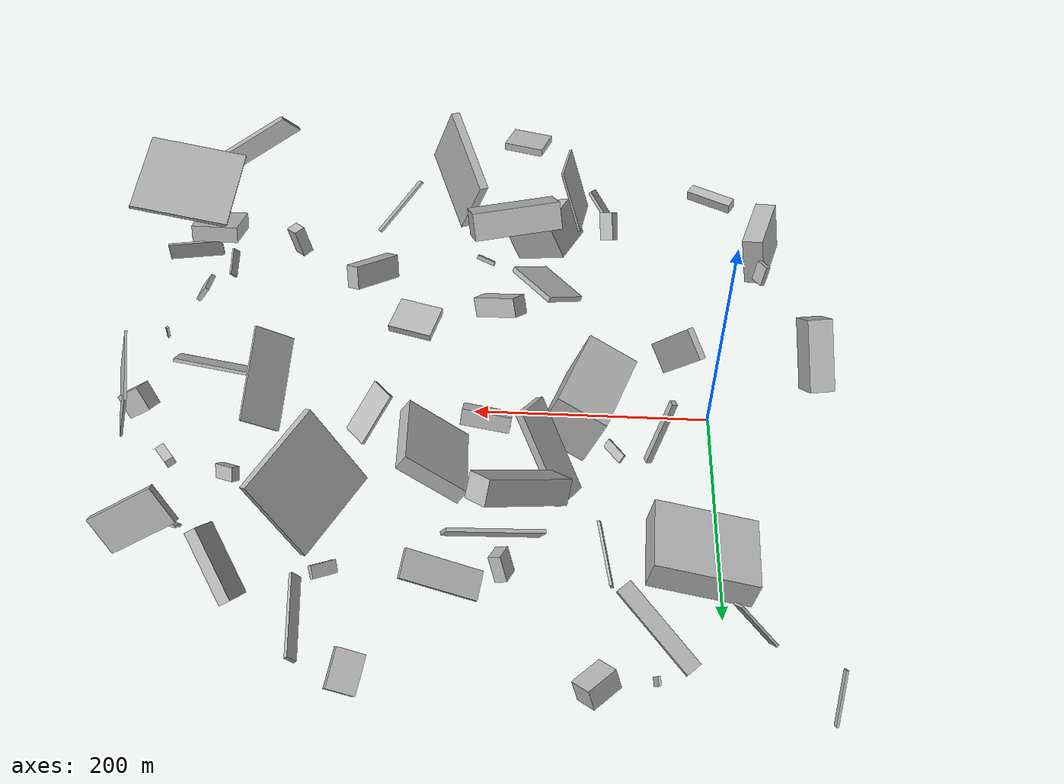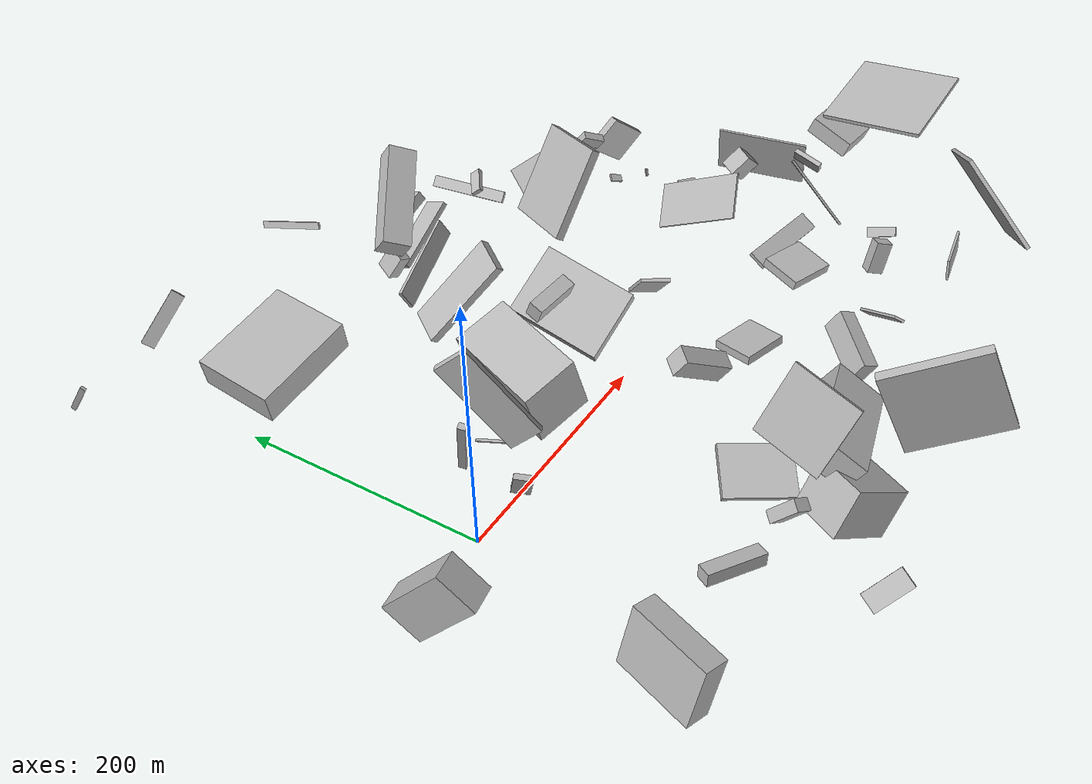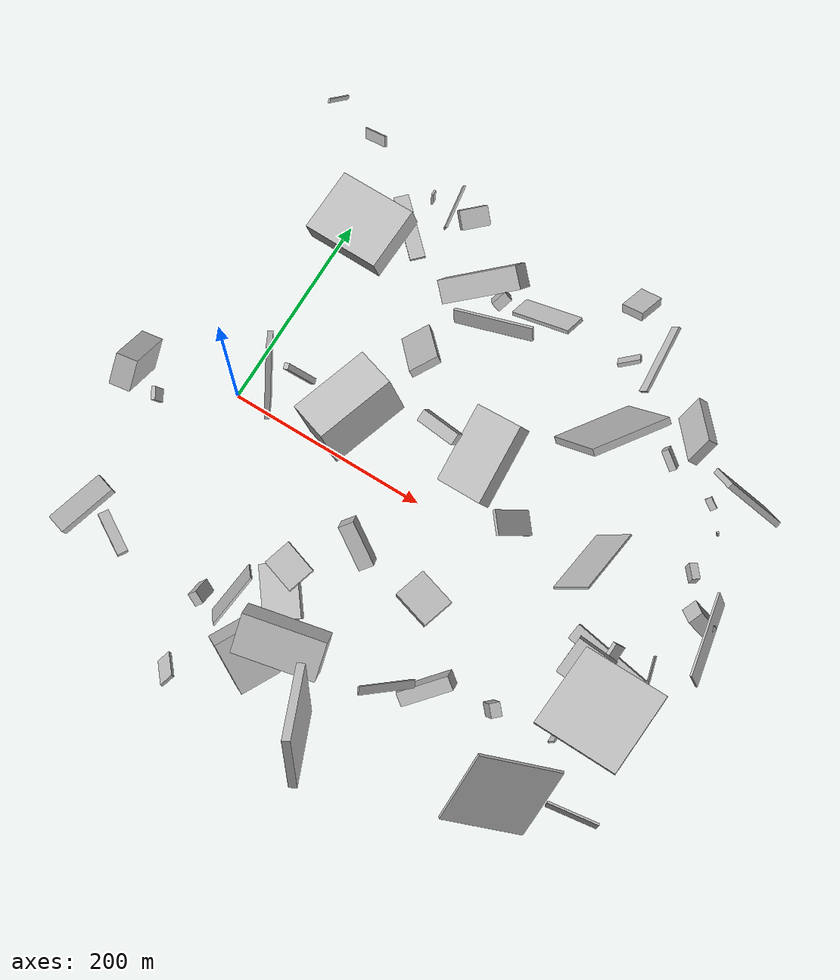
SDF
<sdf version="1.6">
 <world name="default">
  <scene>
   <sky><clouds><speed>12</speed></clouds></sky>
   <ambient>0.4 0.4 0.4 1</ambient>
   <background>0.7 0.7 0.7 1</background>
   <shadows>1</shadows>
  </scene>
  <gravity>0 0 -9.8066</gravity>
  <magnetic_field>6e-06 2.3e-05 -4.2e-05</magnetic_field>
  <physics default="0" name="default_physics" type="ode">
   <ode>
    <solver>
     <type>quick</type>
     <iters>10</iters>
     <sor>1.0</sor>
     <use_dynamic_moi_rescaling>0</use_dynamic_moi_rescaling>
    </solver>
    <constraints>
     <cfm>0</cfm>
     <erp>0.2</erp>
     <contact_max_correcting_vel>100</contact_max_correcting_vel>
     <contact_surface_layer>0.001</contact_surface_layer>
    </constraints>
   </ode>
   <max_step_size>0.004</max_step_size>
   <real_time_factor>1</real_time_factor>
   <real_time_update_rate>250</real_time_update_rate>
  </physics>
  <light name="sun" type="directional">
   <pose>0 0 10 0 0 0</pose>
   <diffuse>0.8 0.8 0.8 1</diffuse>
   <specular>0.2 0.2 0.2 1</specular>
   <attenuation>
    <range>1000</range>
    <constant>0.9</constant>
    <linear>0.01</linear>
    <quadratic>0.001</quadratic>
   </attenuation>
   <direction>-0.5 0.1 -0.9</direction>
  </light>
  <model name="building_1">
   <static>0</static>
   <pose>467.76090489960416 -45.89888958203898 38.56778294948547 1.960808910937761 0.5670550512998792 2.5669896251496627</pose>
   <link name="link">
    <gravity>0</gravity>
    <pose>0 0 1.0 0 0 0</pose>
    <collision name="collision"><geometry><box><size>2 78 2</size></box></geometry></collision>
    <visual name="visual">
     <cast_shadows>0</cast_shadows>
     <geometry><box><size>2 78 2</size></box></geometry>
     <material>
      <script>
       <uri>model://HANNAS_wall/materials/scripts</uri>
       <uri>model://HANNAS_wall/materials/textures</uri>
       <name>vrc/HANNAS_wall</name>
      </script>
     </material>
    </visual>
   </link>
  </model>
  <model name="building_2">
   <static>0</static>
   <pose>167.74798122561947 200.3650393923962 48.130913304036426 -0.4355031939083806 0.3586553467992852 -1.9375435690120009</pose>
   <link name="link">
    <gravity>0</gravity>
    <pose>0 0 10.5 0 0 0</pose>
    <collision name="collision"><geometry><box><size>16 10 21</size></box></geometry></collision>
    <visual name="visual">
     <cast_shadows>0</cast_shadows>
     <geometry><box><size>16 10 21</size></box></geometry>
     <material>
      <script>
       <uri>model://HANNAS_wall/materials/scripts</uri>
       <uri>model://HANNAS_wall/materials/textures</uri>
       <name>vrc/HANNAS_wall</name>
      </script>
     </material>
    </visual>
   </link>
  </model>
  <model name="building_3">
   <static>0</static>
   <pose>119.69699389766646 -176.48883424432944 100.86048902780854 0.6544457456956061 -1.1321958697068066 -0.7623614435813247</pose>
   <link name="link">
    <gravity>0</gravity>
    <pose>0 0 1.0 0 0 0</pose>
    <collision name="collision"><geometry><box><size>57 52 2</size></box></geometry></collision>
    <visual name="visual">
     <cast_shadows>0</cast_shadows>
     <geometry><box><size>57 52 2</size></box></geometry>
     <material>
      <script>
       <uri>model://HANNAS_wall/materials/scripts</uri>
       <uri>model://HANNAS_wall/materials/textures</uri>
       <name>vrc/HANNAS_wall</name>
      </script>
     </material>
    </visual>
   </link>
  </model>
  <model name="building_4">
   <static>0</static>
   <pose>175.00066919820156 172.68982923467365 67.58212561407267 2.6937456812024085 -0.25419174938237227 0.21216894997660307</pose>
   <link name="link">
    <gravity>0</gravity>
    <pose>0 0 8.0 0 0 0</pose>
    <collision name="collision"><geometry><box><size>79 3 16</size></box></geometry></collision>
    <visual name="visual">
     <cast_shadows>0</cast_shadows>
     <geometry><box><size>79 3 16</size></box></geometry>
     <material>
      <script>
       <uri>model://HANNAS_wall/materials/scripts</uri>
       <uri>model://HANNAS_wall/materials/textures</uri>
       <name>vrc/HANNAS_wall</name>
      </script>
     </material>
    </visual>
   </link>
  </model>
  <model name="building_5">
   <static>0</static>
   <pose>-56.07373087183152 -168.70745344216573 26.718574522673176 0.0711196364233532 0.19982613068525787 -0.2861187823008813</pose>
   <link name="link">
    <gravity>0</gravity>
    <pose>0 0 23.0 0 0 0</pose>
    <collision name="collision"><geometry><box><size>18 58 46</size></box></geometry></collision>
    <visual name="visual">
     <cast_shadows>0</cast_shadows>
     <geometry><box><size>18 58 46</size></box></geometry>
     <material>
      <script>
       <uri>model://HANNAS_wall/materials/scripts</uri>
       <uri>model://HANNAS_wall/materials/textures</uri>
       <name>vrc/HANNAS_wall</name>
      </script>
     </material>
    </visual>
   </link>
  </model>
  <model name="building_6">
   <static>0</static>
   <pose>123.76824530147195 -196.18021792045238 37.91261764534243 -3.1195749987423707 1.0888980667937036 2.6772491549586017</pose>
   <link name="link">
    <gravity>0</gravity>
    <pose>0 0 26.0 0 0 0</pose>
    <collision name="collision"><geometry><box><size>38 40 52</size></box></geometry></collision>
    <visual name="visual">
     <cast_shadows>0</cast_shadows>
     <geometry><box><size>38 40 52</size></box></geometry>
     <material>
      <script>
       <uri>model://HANNAS_wall/materials/scripts</uri>
       <uri>model://HANNAS_wall/materials/textures</uri>
       <name>vrc/HANNAS_wall</name>
      </script>
     </material>
    </visual>
   </link>
  </model>
  <model name="building_7">
   <static>0</static>
   <pose>99.42508004159288 228.1157326311536 121.7635861212911 -0.5451835780751348 -1.177148610909166 0.69374356389601</pose>
   <link name="link">
    <gravity>0</gravity>
    <pose>0 0 1.0 0 0 0</pose>
    <collision name="collision"><geometry><box><size>5 49 2</size></box></geometry></collision>
    <visual name="visual">
     <cast_shadows>0</cast_shadows>
     <geometry><box><size>5 49 2</size></box></geometry>
     <material>
      <script>
       <uri>model://HANNAS_wall/materials/scripts</uri>
       <uri>model://HANNAS_wall/materials/textures</uri>
       <name>vrc/HANNAS_wall</name>
      </script>
     </material>
    </visual>
   </link>
  </model>
  <model name="building_8">
   <static>0</static>
   <pose>369.05327053441437 24.721455327499108 61.696660127909915 2.4820770628777655 -0.7124499289047013 0.37323103657390316</pose>
   <link name="link">
    <gravity>0</gravity>
    <pose>0 0 1.0 0 0 0</pose>
    <collision name="collision"><geometry><box><size>39 80 2</size></box></geometry></collision>
    <visual name="visual">
     <cast_shadows>0</cast_shadows>
     <geometry><box><size>39 80 2</size></box></geometry>
     <material>
      <script>
       <uri>model://HANNAS_wall/materials/scripts</uri>
       <uri>model://HANNAS_wall/materials/textures</uri>
       <name>vrc/HANNAS_wall</name>
      </script>
     </material>
    </visual>
   </link>
  </model>
  <model name="building_9">
   <static>0</static>
   <pose>45.51082385057803 38.94982850195049 31.613713482311965 1.4075567532326694 0.32797302455336375 -2.8937865150148454</pose>
   <link name="link">
    <gravity>0</gravity>
    <pose>0 0 3.0 0 0 0</pose>
    <collision name="collision"><geometry><box><size>5 62 6</size></box></geometry></collision>
    <visual name="visual">
     <cast_shadows>0</cast_shadows>
     <geometry><box><size>5 62 6</size></box></geometry>
     <material>
      <script>
       <uri>model://HANNAS_wall/materials/scripts</uri>
       <uri>model://HANNAS_wall/materials/textures</uri>
       <name>vrc/HANNAS_wall</name>
      </script>
     </material>
    </visual>
   </link>
  </model>
  <model name="building_10">
   <static>0</static>
   <pose>294.63536244036794 -142.35243292427134 24.91173869352445 1.9620051519185902 -0.32957902686724727 0.8119596341572793</pose>
   <link name="link">
    <gravity>0</gravity>
    <pose>0 0 7.0 0 0 0</pose>
    <collision name="collision"><geometry><box><size>51 21 14</size></box></geometry></collision>
    <visual name="visual">
     <cast_shadows>0</cast_shadows>
     <geometry><box><size>51 21 14</size></box></geometry>
     <material>
      <script>
       <uri>model://HANNAS_wall/materials/scripts</uri>
       <uri>model://HANNAS_wall/materials/textures</uri>
       <name>vrc/HANNAS_wall</name>
      </script>
     </material>
    </visual>
   </link>
  </model>
  <model name="building_11">
   <static>0</static>
   <pose>86.12117932468257 -191.9771332239602 62.678237722722315 -2.5188464828635984 0.42536772552413077 -0.43555010894378016</pose>
   <link name="link">
    <gravity>0</gravity>
    <pose>0 0 12.5 0 0 0</pose>
    <collision name="collision"><geometry><box><size>13 9 25</size></box></geometry></collision>
    <visual name="visual">
     <cast_shadows>0</cast_shadows>
     <geometry><box><size>13 9 25</size></box></geometry>
     <material>
      <script>
       <uri>model://HANNAS_wall/materials/scripts</uri>
       <uri>model://HANNAS_wall/materials/textures</uri>
       <name>vrc/HANNAS_wall</name>
      </script>
     </material>
    </visual>
   </link>
  </model>
  <model name="building_12">
   <static>0</static>
   <pose>379.49934510850653 135.512088676271 79.31863089107786 0.7339247815496573 0.9141968366835045 1.6102956904958419</pose>
   <link name="link">
    <gravity>0</gravity>
    <pose>0 0 3.5 0 0 0</pose>
    <collision name="collision"><geometry><box><size>11 20 7</size></box></geometry></collision>
    <visual name="visual">
     <cast_shadows>0</cast_shadows>
     <geometry><box><size>11 20 7</size></box></geometry>
     <material>
      <script>
       <uri>model://HANNAS_wall/materials/scripts</uri>
       <uri>model://HANNAS_wall/materials/textures</uri>
       <name>vrc/HANNAS_wall</name>
      </script>
     </material>
    </visual>
   </link>
  </model>
  <model name="building_13">
   <static>0</static>
   <pose>282.63941302587773 270.1954825995849 20.44656383439693 -0.4505242957310167 -0.35323611856444104 -0.05887435509634746</pose>
   <link name="link">
    <gravity>0</gravity>
    <pose>0 0 4.5 0 0 0</pose>
    <collision name="collision"><geometry><box><size>23 31 9</size></box></geometry></collision>
    <visual name="visual">
     <cast_shadows>0</cast_shadows>
     <geometry><box><size>23 31 9</size></box></geometry>
     <material>
      <script>
       <uri>model://HANNAS_wall/materials/scripts</uri>
       <uri>model://HANNAS_wall/materials/textures</uri>
       <name>vrc/HANNAS_wall</name>
      </script>
     </material>
    </visual>
   </link>
  </model>
  <model name="building_14">
   <static>0</static>
   <pose>21.164218711686047 155.49823133244388 67.2811133640179 -1.4875752832616775 -0.1875319985691738 -0.0686216709291907</pose>
   <link name="link">
    <gravity>0</gravity>
    <pose>0 0 31.5 0 0 0</pose>
    <collision name="collision"><geometry><box><size>80 24 63</size></box></geometry></collision>
    <visual name="visual">
     <cast_shadows>0</cast_shadows>
     <geometry><box><size>80 24 63</size></box></geometry>
     <material>
      <script>
       <uri>model://HANNAS_wall/materials/scripts</uri>
       <uri>model://HANNAS_wall/materials/textures</uri>
       <name>vrc/HANNAS_wall</name>
      </script>
     </material>
    </visual>
   </link>
  </model>
  <model name="building_15">
   <static>0</static>
   <pose>205.20119969549899 -187.28204719792512 6.09263249411936 1.625644202755027 0.3340420265938035 -2.0271587954323613</pose>
   <link name="link">
    <gravity>0</gravity>
    <pose>0 0 9.0 0 0 0</pose>
    <collision name="collision"><geometry><box><size>2 4 18</size></box></geometry></collision>
    <visual name="visual">
     <cast_shadows>0</cast_shadows>
     <geometry><box><size>2 4 18</size></box></geometry>
     <material>
      <script>
       <uri>model://HANNAS_wall/materials/scripts</uri>
       <uri>model://HANNAS_wall/materials/textures</uri>
       <name>vrc/HANNAS_wall</name>
      </script>
     </material>
    </visual>
   </link>
  </model>
  <model name="building_16">
   <static>0</static>
   <pose>443.04189529075927 -104.1665858133776 161.83352429607913 2.9641304734658345 0.09331097109590529 1.50928313298083</pose>
   <link name="link">
    <gravity>0</gravity>
    <pose>0 0 1.5 0 0 0</pose>
    <collision name="collision"><geometry><box><size>80 80 3</size></box></geometry></collision>
    <visual name="visual">
     <cast_shadows>0</cast_shadows>
     <geometry><box><size>80 80 3</size></box></geometry>
     <material>
      <script>
       <uri>model://HANNAS_wall/materials/scripts</uri>
       <uri>model://HANNAS_wall/materials/textures</uri>
       <name>vrc/HANNAS_wall</name>
      </script>
     </material>
    </visual>
   </link>
  </model>
  <model name="building_17">
   <static>0</static>
   <pose>450.69609217956423 72.5218373481742 11.337292448013029 -0.2311471325419047 -0.11651769695939072 -0.8840567300514913</pose>
   <link name="link">
    <gravity>0</gravity>
    <pose>0 0 5.5 0 0 0</pose>
    <collision name="collision"><geometry><box><size>16 8 11</size></box></geometry></collision>
    <visual name="visual">
     <cast_shadows>0</cast_shadows>
     <geometry><box><size>16 8 11</size></box></geometry>
     <material>
      <script>
       <uri>model://HANNAS_wall/materials/scripts</uri>
       <uri>model://HANNAS_wall/materials/textures</uri>
       <name>vrc/HANNAS_wall</name>
      </script>
     </material>
    </visual>
   </link>
  </model>
  <model name="building_18">
   <static>0</static>
   <pose>87.41302297147018 39.276659510405395 53.68641980479131 1.2438790196919778 -0.07593101575972604 1.2366901689094458</pose>
   <link name="link">
    <gravity>0</gravity>
    <pose>0 0 22.0 0 0 0</pose>
    <collision name="collision"><geometry><box><size>80 50 44</size></box></geometry></collision>
    <visual name="visual">
     <cast_shadows>0</cast_shadows>
     <geometry><box><size>80 50 44</size></box></geometry>
     <material>
      <script>
       <uri>model://HANNAS_wall/materials/scripts</uri>
       <uri>model://HANNAS_wall/materials/textures</uri>
       <name>vrc/HANNAS_wall</name>
      </script>
     </material>
    </visual>
   </link>
  </model>
  <model name="building_19">
   <static>0</static>
   <pose>57.50324244120317 228.71630504033388 23.085749798226853 -1.6011544010472565 0.3244389758295831 2.3415474709015656</pose>
   <link name="link">
    <gravity>0</gravity>
    <pose>0 0 7.5 0 0 0</pose>
    <collision name="collision"><geometry><box><size>80 2 15</size></box></geometry></collision>
    <visual name="visual">
     <cast_shadows>0</cast_shadows>
     <geometry><box><size>80 2 15</size></box></geometry>
     <material>
      <script>
       <uri>model://HANNAS_wall/materials/scripts</uri>
       <uri>model://HANNAS_wall/materials/textures</uri>
       <name>vrc/HANNAS_wall</name>
      </script>
     </material>
    </visual>
   </link>
  </model>
  <model name="building_20">
   <static>0</static>
   <pose>320.8483177820225 231.43070919656395 26.87957195934561 0.03910800810240422 -0.6947953151965388 -3.0883225438246558</pose>
   <link name="link">
    <gravity>0</gravity>
    <pose>0 0 5.0 0 0 0</pose>
    <collision name="collision"><geometry><box><size>3 72 10</size></box></geometry></collision>
    <visual name="visual">
     <cast_shadows>0</cast_shadows>
     <geometry><box><size>3 72 10</size></box></geometry>
     <material>
      <script>
       <uri>model://HANNAS_wall/materials/scripts</uri>
       <uri>model://HANNAS_wall/materials/textures</uri>
       <name>vrc/HANNAS_wall</name>
      </script>
     </material>
    </visual>
   </link>
  </model>
  <model name="building_21">
   <static>0</static>
   <pose>38.008165680290354 11.392736710180424 96.95709953310222 1.5102365347187658 -0.6364887095651359 -1.0259308558009292</pose>
   <link name="link">
    <gravity>0</gravity>
    <pose>0 0 2.5 0 0 0</pose>
    <collision name="collision"><geometry><box><size>26 80 5</size></box></geometry></collision>
    <visual name="visual">
     <cast_shadows>0</cast_shadows>
     <geometry><box><size>26 80 5</size></box></geometry>
     <material>
      <script>
       <uri>model://HANNAS_wall/materials/scripts</uri>
       <uri>model://HANNAS_wall/materials/textures</uri>
       <name>vrc/HANNAS_wall</name>
      </script>
     </material>
    </visual>
   </link>
  </model>
  <model name="building_22">
   <static>0</static>
   <pose>98.36793547657508 -263.81396921624383 24.936793491759428 2.4737511217457118 -0.7042159308977316 -3.053694580661527</pose>
   <link name="link">
    <gravity>0</gravity>
    <pose>0 0 16.0 0 0 0</pose>
    <collision name="collision"><geometry><box><size>3 15 32</size></box></geometry></collision>
    <visual name="visual">
     <cast_shadows>0</cast_shadows>
     <geometry><box><size>3 15 32</size></box></geometry>
     <material>
      <script>
       <uri>model://HANNAS_wall/materials/scripts</uri>
       <uri>model://HANNAS_wall/materials/textures</uri>
       <name>vrc/HANNAS_wall</name>
      </script>
     </material>
    </visual>
   </link>
  </model>
  <model name="building_23">
   <static>0</static>
   <pose>468.93181357767475 -172.62623423513932 16.12536992630574 1.4898470163698079 0.016921410112726066 0.14358689637609665</pose>
   <link name="link">
    <gravity>0</gravity>
    <pose>0 0 1.0 0 0 0</pose>
    <collision name="collision"><geometry><box><size>50 19 2</size></box></geometry></collision>
    <visual name="visual">
     <cast_shadows>0</cast_shadows>
     <geometry><box><size>50 19 2</size></box></geometry>
     <material>
      <script>
       <uri>model://HANNAS_wall/materials/scripts</uri>
       <uri>model://HANNAS_wall/materials/textures</uri>
       <name>vrc/HANNAS_wall</name>
      </script>
     </material>
    </visual>
   </link>
  </model>
  <model name="building_24">
   <static>0</static>
   <pose>-71.64423449751692 278.33691800197164 66.50105351431361 -2.506699012976065 -0.20769519780910273 0.1219160723829085</pose>
   <link name="link">
    <gravity>0</gravity>
    <pose>0 0 21.0 0 0 0</pose>
    <collision name="collision"><geometry><box><size>2 4 42</size></box></geometry></collision>
    <visual name="visual">
     <cast_shadows>0</cast_shadows>
     <geometry><box><size>2 4 42</size></box></geometry>
     <material>
      <script>
       <uri>model://HANNAS_wall/materials/scripts</uri>
       <uri>model://HANNAS_wall/materials/textures</uri>
       <name>vrc/HANNAS_wall</name>
      </script>
     </material>
    </visual>
   </link>
  </model>
  <model name="building_25">
   <static>0</static>
   <pose>156.41339267004622 -161.89325940517762 16.717877098409147 1.3583357079240117 -1.1003914036168498 -2.300457632857653</pose>
   <link name="link">
    <gravity>0</gravity>
    <pose>0 0 27.5 0 0 0</pose>
    <collision name="collision"><geometry><box><size>5 40 55</size></box></geometry></collision>
    <visual name="visual">
     <cast_shadows>0</cast_shadows>
     <geometry><box><size>5 40 55</size></box></geometry>
     <material>
      <script>
       <uri>model://HANNAS_wall/materials/scripts</uri>
       <uri>model://HANNAS_wall/materials/textures</uri>
       <name>vrc/HANNAS_wall</name>
      </script>
     </material>
    </visual>
   </link>
  </model>
  <model name="building_26">
   <static>0</static>
   <pose>472.27641167298395 39.229398102366346 32.21832618534569 -0.46854529380987214 -0.6839292844446799 3.0334489750049416</pose>
   <link name="link">
    <gravity>0</gravity>
    <pose>0 0 10.5 0 0 0</pose>
    <collision name="collision"><geometry><box><size>24 15 21</size></box></geometry></collision>
    <visual name="visual">
     <cast_shadows>0</cast_shadows>
     <geometry><box><size>24 15 21</size></box></geometry>
     <material>
      <script>
       <uri>model://HANNAS_wall/materials/scripts</uri>
       <uri>model://HANNAS_wall/materials/textures</uri>
       <name>vrc/HANNAS_wall</name>
      </script>
     </material>
    </visual>
   </link>
  </model>
  <model name="building_27">
   <static>0</static>
   <pose>210.8891526662338 -175.6345695884825 57.02917633265869 -1.5285758148059978 -0.5845463936967412 1.7657676525849142</pose>
   <link name="link">
    <gravity>0</gravity>
    <pose>0 0 40.0 0 0 0</pose>
    <collision name="collision"><geometry><box><size>40 25 80</size></box></geometry></collision>
    <visual name="visual">
     <cast_shadows>0</cast_shadows>
     <geometry><box><size>40 25 80</size></box></geometry>
     <material>
      <script>
       <uri>model://HANNAS_wall/materials/scripts</uri>
       <uri>model://HANNAS_wall/materials/textures</uri>
       <name>vrc/HANNAS_wall</name>
      </script>
     </material>
    </visual>
   </link>
  </model>
  <model name="building_28">
   <static>0</static>
   <pose>229.09234940409604 104.13725028342067 36.70415674485167 1.8955819860529943 -0.5937840498130537 -0.14739913233186344</pose>
   <link name="link">
    <gravity>0</gravity>
    <pose>0 0 40.0 0 0 0</pose>
    <collision name="collision"><geometry><box><size>60 14 80</size></box></geometry></collision>
    <visual name="visual">
     <cast_shadows>0</cast_shadows>
     <geometry><box><size>60 14 80</size></box></geometry>
     <material>
      <script>
       <uri>model://HANNAS_wall/materials/scripts</uri>
       <uri>model://HANNAS_wall/materials/textures</uri>
       <name>vrc/HANNAS_wall</name>
      </script>
     </material>
    </visual>
   </link>
  </model>
  <model name="building_29">
   <static>0</static>
   <pose>484.78556856529406 59.43082373554975 45.143826708082514 1.5947249861787685 -0.24313312253831232 0.19665522360313256</pose>
   <link name="link">
    <gravity>0</gravity>
    <pose>0 0 40.0 0 0 0</pose>
    <collision name="collision"><geometry><box><size>2 45 80</size></box></geometry></collision>
    <visual name="visual">
     <cast_shadows>0</cast_shadows>
     <geometry><box><size>2 45 80</size></box></geometry>
     <material>
      <script>
       <uri>model://HANNAS_wall/materials/scripts</uri>
       <uri>model://HANNAS_wall/materials/textures</uri>
       <name>vrc/HANNAS_wall</name>
      </script>
     </material>
    </visual>
   </link>
  </model>
  <model name="building_30">
   <static>0</static>
   <pose>429.69912879219123 -47.671729318717944 93.8884465626886 2.6522551820027593 -0.8972049952447927 -2.78290071591535</pose>
   <link name="link">
    <gravity>0</gravity>
    <pose>0 0 2.0 0 0 0</pose>
    <collision name="collision"><geometry><box><size>14 24 4</size></box></geometry></collision>
    <visual name="visual">
     <cast_shadows>0</cast_shadows>
     <geometry><box><size>14 24 4</size></box></geometry>
     <material>
      <script>
       <uri>model://HANNAS_wall/materials/scripts</uri>
       <uri>model://HANNAS_wall/materials/textures</uri>
       <name>vrc/HANNAS_wall</name>
      </script>
     </material>
    </visual>
   </link>
  </model>
  <model name="building_31">
   <static>0</static>
   <pose>214.23108569192075 205.79325065902748 55.53315368137088 -2.693890832755807 0.4671986255029572 -3.11400101624834</pose>
   <link name="link">
    <gravity>0</gravity>
    <pose>0 0 2.0 0 0 0</pose>
    <collision name="collision"><geometry><box><size>64 23 4</size></box></geometry></collision>
    <visual name="visual">
     <cast_shadows>0</cast_shadows>
     <geometry><box><size>64 23 4</size></box></geometry>
     <material>
      <script>
       <uri>model://HANNAS_wall/materials/scripts</uri>
       <uri>model://HANNAS_wall/materials/textures</uri>
       <name>vrc/HANNAS_wall</name>
      </script>
     </material>
    </visual>
   </link>
  </model>
  <model name="building_32">
   <static>0</static>
   <pose>227.94301100432529 -238.1034948361874 66.43312067880943 -1.6582552378051856 0.41605999933932475 1.9880633825573641</pose>
   <link name="link">
    <gravity>0</gravity>
    <pose>0 0 4.0 0 0 0</pose>
    <collision name="collision"><geometry><box><size>80 77 8</size></box></geometry></collision>
    <visual name="visual">
     <cast_shadows>0</cast_shadows>
     <geometry><box><size>80 77 8</size></box></geometry>
     <material>
      <script>
       <uri>model://HANNAS_wall/materials/scripts</uri>
       <uri>model://HANNAS_wall/materials/textures</uri>
       <name>vrc/HANNAS_wall</name>
      </script>
     </material>
    </visual>
   </link>
  </model>
  <model name="building_33">
   <static>0</static>
   <pose>157.7395853630809 -153.55856241786614 180.07307108779852 1.3922443179494892 -0.05119716243081307 2.8340006123387</pose>
   <link name="link">
    <gravity>0</gravity>
    <pose>0 0 13.0 0 0 0</pose>
    <collision name="collision"><geometry><box><size>32 6 26</size></box></geometry></collision>
    <visual name="visual">
     <cast_shadows>0</cast_shadows>
     <geometry><box><size>32 6 26</size></box></geometry>
     <material>
      <script>
       <uri>model://HANNAS_wall/materials/scripts</uri>
       <uri>model://HANNAS_wall/materials/textures</uri>
       <name>vrc/HANNAS_wall</name>
      </script>
     </material>
    </visual>
   </link>
  </model>
  <model name="building_34">
   <static>0</static>
   <pose>-84.62573452687917 -44.5076913040667 42.53768088043576 0.010272884087028854 -0.849162882008206 -1.4283356711774646</pose>
   <link name="link">
    <gravity>0</gravity>
    <pose>0 0 16.0 0 0 0</pose>
    <collision name="collision"><geometry><box><size>61 21 32</size></box></geometry></collision>
    <visual name="visual">
     <cast_shadows>0</cast_shadows>
     <geometry><box><size>61 21 32</size></box></geometry>
     <material>
      <script>
       <uri>model://HANNAS_wall/materials/scripts</uri>
       <uri>model://HANNAS_wall/materials/textures</uri>
       <name>vrc/HANNAS_wall</name>
      </script>
     </material>
    </visual>
   </link>
  </model>
  <model name="building_35">
   <static>0</static>
   <pose>275.2333964367947 13.584259976898561 41.026980566617624 2.99586146116756 0.7606348090689226 -2.555321693336428</pose>
   <link name="link">
    <gravity>0</gravity>
    <pose>0 0 24.0 0 0 0</pose>
    <collision name="collision"><geometry><box><size>3 24 48</size></box></geometry></collision>
    <visual name="visual">
     <cast_shadows>0</cast_shadows>
     <geometry><box><size>3 24 48</size></box></geometry>
     <material>
      <script>
       <uri>model://HANNAS_wall/materials/scripts</uri>
       <uri>model://HANNAS_wall/materials/textures</uri>
       <name>vrc/HANNAS_wall</name>
      </script>
     </material>
    </visual>
   </link>
  </model>
  <model name="building_36">
   <static>0</static>
   <pose>255.45479843038402 -79.496473063776 26.0732468473563 -0.07365539459958746 0.01040658748944679 -0.28697043508836473</pose>
   <link name="link">
    <gravity>0</gravity>
    <pose>0 0 3.5 0 0 0</pose>
    <collision name="collision"><geometry><box><size>39 33 7</size></box></geometry></collision>
    <visual name="visual">
     <cast_shadows>0</cast_shadows>
     <geometry><box><size>39 33 7</size></box></geometry>
     <material>
      <script>
       <uri>model://HANNAS_wall/materials/scripts</uri>
       <uri>model://HANNAS_wall/materials/textures</uri>
       <name>vrc/HANNAS_wall</name>
      </script>
     </material>
    </visual>
   </link>
  </model>
  <model name="building_37">
   <static>0</static>
   <pose>406.86994299584717 -231.23082621707775 89.49854670008405 0.6814727745619799 -0.41827636778085064 -2.7352971728086133</pose>
   <link name="link">
    <gravity>0</gravity>
    <pose>0 0 40.0 0 0 0</pose>
    <collision name="collision"><geometry><box><size>80 3 80</size></box></geometry></collision>
    <visual name="visual">
     <cast_shadows>0</cast_shadows>
     <geometry><box><size>80 3 80</size></box></geometry>
     <material>
      <script>
       <uri>model://HANNAS_wall/materials/scripts</uri>
       <uri>model://HANNAS_wall/materials/textures</uri>
       <name>vrc/HANNAS_wall</name>
      </script>
     </material>
    </visual>
   </link>
  </model>
  <model name="building_38">
   <static>0</static>
   <pose>129.92803308503971 159.87080424356944 106.18844606229608 0.6444092034799673 0.8713812167701045 1.3121172079111616</pose>
   <link name="link">
    <gravity>0</gravity>
    <pose>0 0 40.0 0 0 0</pose>
    <collision name="collision"><geometry><box><size>20 22 80</size></box></geometry></collision>
    <visual name="visual">
     <cast_shadows>0</cast_shadows>
     <geometry><box><size>20 22 80</size></box></geometry>
     <material>
      <script>
       <uri>model://HANNAS_wall/materials/scripts</uri>
       <uri>model://HANNAS_wall/materials/textures</uri>
       <name>vrc/HANNAS_wall</name>
      </script>
     </material>
    </visual>
   </link>
  </model>
  <model name="building_39">
   <static>0</static>
   <pose>366.6187521248155 -142.13369191542546 65.49985002125877 -0.455225841141774 -1.2947966970987457 -0.3588320234818785</pose>
   <link name="link">
    <gravity>0</gravity>
    <pose>0 0 6.5 0 0 0</pose>
    <collision name="collision"><geometry><box><size>26 10 13</size></box></geometry></collision>
    <visual name="visual">
     <cast_shadows>0</cast_shadows>
     <geometry><box><size>26 10 13</size></box></geometry>
     <material>
      <script>
       <uri>model://HANNAS_wall/materials/scripts</uri>
       <uri>model://HANNAS_wall/materials/textures</uri>
       <name>vrc/HANNAS_wall</name>
      </script>
     </material>
    </visual>
   </link>
  </model>
  <model name="building_40">
   <static>0</static>
   <pose>438.1590041959687 137.44027874881397 11.632781828913146 1.0095470432515898 -0.8946300608101223 -1.657945326633213</pose>
   <link name="link">
    <gravity>0</gravity>
    <pose>0 0 6.0 0 0 0</pose>
    <collision name="collision"><geometry><box><size>2 7 12</size></box></geometry></collision>
    <visual name="visual">
     <cast_shadows>0</cast_shadows>
     <geometry><box><size>2 7 12</size></box></geometry>
     <material>
      <script>
       <uri>model://HANNAS_wall/materials/scripts</uri>
       <uri>model://HANNAS_wall/materials/textures</uri>
       <name>vrc/HANNAS_wall</name>
      </script>
     </material>
    </visual>
   </link>
  </model>
  <model name="building_41">
   <static>0</static>
   <pose>320.82282895902625 138.36089722288403 71.46378871899071 2.788081738183537 -1.0077243667864704 -0.26539303625993343</pose>
   <link name="link">
    <gravity>0</gravity>
    <pose>0 0 3.5 0 0 0</pose>
    <collision name="collision"><geometry><box><size>80 80 7</size></box></geometry></collision>
    <visual name="visual">
     <cast_shadows>0</cast_shadows>
     <geometry><box><size>80 80 7</size></box></geometry>
     <material>
      <script>
       <uri>model://HANNAS_wall/materials/scripts</uri>
       <uri>model://HANNAS_wall/materials/textures</uri>
       <name>vrc/HANNAS_wall</name>
      </script>
     </material>
    </visual>
   </link>
  </model>
  <model name="building_42">
   <static>0</static>
   <pose>453.05740128791535 118.77290411802504 16.764935285525777 -1.5082032507524346 -1.388991816428594 2.6848267164417625</pose>
   <link name="link">
    <gravity>0</gravity>
    <pose>0 0 1.0 0 0 0</pose>
    <collision name="collision"><geometry><box><size>8 2 2</size></box></geometry></collision>
    <visual name="visual">
     <cast_shadows>0</cast_shadows>
     <geometry><box><size>8 2 2</size></box></geometry>
     <material>
      <script>
       <uri>model://HANNAS_wall/materials/scripts</uri>
       <uri>model://HANNAS_wall/materials/textures</uri>
       <name>vrc/HANNAS_wall</name>
      </script>
     </material>
    </visual>
   </link>
  </model>
  <model name="building_43">
   <static>0</static>
   <pose>134.93884026212928 107.84414857084619 83.82717816487579 2.2399612200869248 -0.24211711683951392 0.9918510856768271</pose>
   <link name="link">
    <gravity>0</gravity>
    <pose>0 0 3.5 0 0 0</pose>
    <collision name="collision"><geometry><box><size>29 80 7</size></box></geometry></collision>
    <visual name="visual">
     <cast_shadows>0</cast_shadows>
     <geometry><box><size>29 80 7</size></box></geometry>
     <material>
      <script>
       <uri>model://HANNAS_wall/materials/scripts</uri>
       <uri>model://HANNAS_wall/materials/textures</uri>
       <name>vrc/HANNAS_wall</name>
      </script>
     </material>
    </visual>
   </link>
  </model>
  <model name="building_44">
   <static>0</static>
   <pose>430.8990593521137 153.87714701095575 59.17605887845846 2.6224295921879746 0.82274338330484 2.5337565808678075</pose>
   <link name="link">
    <gravity>0</gravity>
    <pose>0 0 34.5 0 0 0</pose>
    <collision name="collision"><geometry><box><size>34 6 69</size></box></geometry></collision>
    <visual name="visual">
     <cast_shadows>0</cast_shadows>
     <geometry><box><size>34 6 69</size></box></geometry>
     <material>
      <script>
       <uri>model://HANNAS_wall/materials/scripts</uri>
       <uri>model://HANNAS_wall/materials/textures</uri>
       <name>vrc/HANNAS_wall</name>
      </script>
     </material>
    </visual>
   </link>
  </model>
  <model name="building_45">
   <static>0</static>
   <pose>87.82161446601056 258.320382440141 13.970087206261306 1.5822997532436986 -0.42518991649038435 2.3270534816656765</pose>
   <link name="link">
    <gravity>0</gravity>
    <pose>0 0 14.0 0 0 0</pose>
    <collision name="collision"><geometry><box><size>19 18 28</size></box></geometry></collision>
    <visual name="visual">
     <cast_shadows>0</cast_shadows>
     <geometry><box><size>19 18 28</size></box></geometry>
     <material>
      <script>
       <uri>model://HANNAS_wall/materials/scripts</uri>
       <uri>model://HANNAS_wall/materials/textures</uri>
       <name>vrc/HANNAS_wall</name>
      </script>
     </material>
    </visual>
   </link>
  </model>
  <model name="building_46">
   <static>0</static>
   <pose>-21.515032046885665 265.6936464558309 75.30741423508687 0.4502200218888413 -0.6293813020936037 2.1097464540220097</pose>
   <link name="link">
    <gravity>0</gravity>
    <pose>0 0 22.0 0 0 0</pose>
    <collision name="collision"><geometry><box><size>10 2 44</size></box></geometry></collision>
    <visual name="visual">
     <cast_shadows>0</cast_shadows>
     <geometry><box><size>10 2 44</size></box></geometry>
     <material>
      <script>
       <uri>model://HANNAS_wall/materials/scripts</uri>
       <uri>model://HANNAS_wall/materials/textures</uri>
       <name>vrc/HANNAS_wall</name>
      </script>
     </material>
    </visual>
   </link>
  </model>
  <model name="building_47">
   <static>0</static>
   <pose>54.39346352412815 261.4582360934322 17.558598930520823 2.048425653351056 0.13002721871122166 -2.9422162504834</pose>
   <link name="link">
    <gravity>0</gravity>
    <pose>0 0 3.5 0 0 0</pose>
    <collision name="collision"><geometry><box><size>2 12 7</size></box></geometry></collision>
    <visual name="visual">
     <cast_shadows>0</cast_shadows>
     <geometry><box><size>2 12 7</size></box></geometry>
     <material>
      <script>
       <uri>model://HANNAS_wall/materials/scripts</uri>
       <uri>model://HANNAS_wall/materials/textures</uri>
       <name>vrc/HANNAS_wall</name>
      </script>
     </material>
    </visual>
   </link>
  </model>
  <model name="building_48">
   <static>0</static>
   <pose>-32.3066316812906 -59.366216679706255 109.49325769396485 -0.1650104714404117 0.29613276065441474 -2.670252239270011</pose>
   <link name="link">
    <gravity>0</gravity>
    <pose>0 0 8.5 0 0 0</pose>
    <collision name="collision"><geometry><box><size>4 12 17</size></box></geometry></collision>
    <visual name="visual">
     <cast_shadows>0</cast_shadows>
     <geometry><box><size>4 12 17</size></box></geometry>
     <material>
      <script>
       <uri>model://HANNAS_wall/materials/scripts</uri>
       <uri>model://HANNAS_wall/materials/textures</uri>
       <name>vrc/HANNAS_wall</name>
      </script>
     </material>
    </visual>
   </link>
  </model>
  <model name="building_49">
   <static>0</static>
   <pose>-0.6368310628405478 -179.79986208506614 89.23065356720906 1.4940429904987014 0.07931135353502143 -0.5474497230216684</pose>
   <link name="link">
    <gravity>0</gravity>
    <pose>0 0 5.0 0 0 0</pose>
    <collision name="collision"><geometry><box><size>41 9 10</size></box></geometry></collision>
    <visual name="visual">
     <cast_shadows>0</cast_shadows>
     <geometry><box><size>41 9 10</size></box></geometry>
     <material>
      <script>
       <uri>model://HANNAS_wall/materials/scripts</uri>
       <uri>model://HANNAS_wall/materials/textures</uri>
       <name>vrc/HANNAS_wall</name>
      </script>
     </material>
    </visual>
   </link>
  </model>
  <model name="building_50">
   <static>0</static>
   <pose>163.97929302785852 -62.055180110581524 68.90745396624682 -2.5371793545610553 -0.9602871714205622 -1.2360663857210428</pose>
   <link name="link">
    <gravity>0</gravity>
    <pose>0 0 22.5 0 0 0</pose>
    <collision name="collision"><geometry><box><size>17 15 45</size></box></geometry></collision>
    <visual name="visual">
     <cast_shadows>0</cast_shadows>
     <geometry><box><size>17 15 45</size></box></geometry>
     <material>
      <script>
       <uri>model://HANNAS_wall/materials/scripts</uri>
       <uri>model://HANNAS_wall/materials/textures</uri>
       <name>vrc/HANNAS_wall</name>
      </script>
     </material>
    </visual>
   </link>
  </model>
  <model name="building_51">
   <static>0</static>
   <pose>419.9667935533624 -121.74594634388578 50.998054957347456 2.54798745643233 -0.8852495216808342 0.4715217428408472</pose>
   <link name="link">
    <gravity>0</gravity>
    <pose>0 0 1.0 0 0 0</pose>
    <collision name="collision"><geometry><box><size>8 25 2</size></box></geometry></collision>
    <visual name="visual">
     <cast_shadows>0</cast_shadows>
     <geometry><box><size>8 25 2</size></box></geometry>
     <material>
      <script>
       <uri>model://HANNAS_wall/materials/scripts</uri>
       <uri>model://HANNAS_wall/materials/textures</uri>
       <name>vrc/HANNAS_wall</name>
      </script>
     </material>
    </visual>
   </link>
  </model>
  <model name="building_52">
   <static>0</static>
   <pose>188.42999437726667 61.406905598647285 55.75514189729053 0.0955395175994804 0.409284357214291 -1.653382867326899</pose>
   <link name="link">
    <gravity>0</gravity>
    <pose>0 0 7.0 0 0 0</pose>
    <collision name="collision"><geometry><box><size>12 40 14</size></box></geometry></collision>
    <visual name="visual">
     <cast_shadows>0</cast_shadows>
     <geometry><box><size>12 40 14</size></box></geometry>
     <material>
      <script>
       <uri>model://HANNAS_wall/materials/scripts</uri>
       <uri>model://HANNAS_wall/materials/textures</uri>
       <name>vrc/HANNAS_wall</name>
      </script>
     </material>
    </visual>
   </link>
  </model>
  <model name="building_53">
   <static>0</static>
   <pose>384.4253329622599 187.72481677723263 35.317183589303184 2.3085067999650835 -0.7291856316739421 1.2450672112130305</pose>
   <link name="link">
    <gravity>0</gravity>
    <pose>0 0 5.0 0 0 0</pose>
    <collision name="collision"><geometry><box><size>30 61 10</size></box></geometry></collision>
    <visual name="visual">
     <cast_shadows>0</cast_shadows>
     <geometry><box><size>30 61 10</size></box></geometry>
     <material>
      <script>
       <uri>model://HANNAS_wall/materials/scripts</uri>
       <uri>model://HANNAS_wall/materials/textures</uri>
       <name>vrc/HANNAS_wall</name>
      </script>
     </material>
    </visual>
   </link>
  </model>
  <model name="building_54">
   <static>0</static>
   <pose>413.38174290554747 -91.05376987700105 131.11576020458796 0.12199555468216013 1.1979684502726133 1.614540156041677</pose>
   <link name="link">
    <gravity>0</gravity>
    <pose>0 0 17.5 0 0 0</pose>
    <collision name="collision"><geometry><box><size>13 38 35</size></box></geometry></collision>
    <visual name="visual">
     <cast_shadows>0</cast_shadows>
     <geometry><box><size>13 38 35</size></box></geometry>
     <material>
      <script>
       <uri>model://HANNAS_wall/materials/scripts</uri>
       <uri>model://HANNAS_wall/materials/textures</uri>
       <name>vrc/HANNAS_wall</name>
      </script>
     </material>
    </visual>
   </link>
  </model>
  <model name="building_55">
   <static>0</static>
   <pose>426.2777614818049 -27.941201687158465 13.086762280245244 -3.1011813702396087 -1.0305460353984754 -1.7815883329634599</pose>
   <link name="link">
    <gravity>0</gravity>
    <pose>0 0 8.5 0 0 0</pose>
    <collision name="collision"><geometry><box><size>3 80 17</size></box></geometry></collision>
    <visual name="visual">
     <cast_shadows>0</cast_shadows>
     <geometry><box><size>3 80 17</size></box></geometry>
     <material>
      <script>
       <uri>model://HANNAS_wall/materials/scripts</uri>
       <uri>model://HANNAS_wall/materials/textures</uri>
       <name>vrc/HANNAS_wall</name>
      </script>
     </material>
    </visual>
   </link>
  </model>
  <model name="building_56">
   <static>0</static>
   <pose>78.47298957413386 41.67452391419755 10.09175441021763 -2.4190851237422755 0.11054951297941223 -1.0095056223330199</pose>
   <link name="link">
    <gravity>0</gravity>
    <pose>0 0 4.0 0 0 0</pose>
    <collision name="collision"><geometry><box><size>23 2 8</size></box></geometry></collision>
    <visual name="visual">
     <cast_shadows>0</cast_shadows>
     <geometry><box><size>23 2 8</size></box></geometry>
     <material>
      <script>
       <uri>model://HANNAS_wall/materials/scripts</uri>
       <uri>model://HANNAS_wall/materials/textures</uri>
       <name>vrc/HANNAS_wall</name>
      </script>
     </material>
    </visual>
   </link>
  </model>
  <model name="building_57">
   <static>0</static>
   <pose>292.08906016636297 -154.18660778236807 65.13364913993547 -0.9416634625156525 -0.5115001063330569 2.0060264387513174</pose>
   <link name="link">
    <gravity>0</gravity>
    <pose>0 0 29.0 0 0 0</pose>
    <collision name="collision"><geometry><box><size>8 2 58</size></box></geometry></collision>
    <visual name="visual">
     <cast_shadows>0</cast_shadows>
     <geometry><box><size>8 2 58</size></box></geometry>
     <material>
      <script>
       <uri>model://HANNAS_wall/materials/scripts</uri>
       <uri>model://HANNAS_wall/materials/textures</uri>
       <name>vrc/HANNAS_wall</name>
      </script>
     </material>
    </visual>
   </link>
  </model>
  <model name="building_58">
   <static>0</static>
   <pose>301.0974037040162 207.49262866972077 58.8195173253923 -2.653454689224004 -0.6873223754384679 -1.2667831528976394</pose>
   <link name="link">
    <gravity>0</gravity>
    <pose>0 0 2.0 0 0 0</pose>
    <collision name="collision"><geometry><box><size>10 22 4</size></box></geometry></collision>
    <visual name="visual">
     <cast_shadows>0</cast_shadows>
     <geometry><box><size>10 22 4</size></box></geometry>
     <material>
      <script>
       <uri>model://HANNAS_wall/materials/scripts</uri>
       <uri>model://HANNAS_wall/materials/textures</uri>
       <name>vrc/HANNAS_wall</name>
      </script>
     </material>
    </visual>
   </link>
  </model>
 </world>
</sdf>
